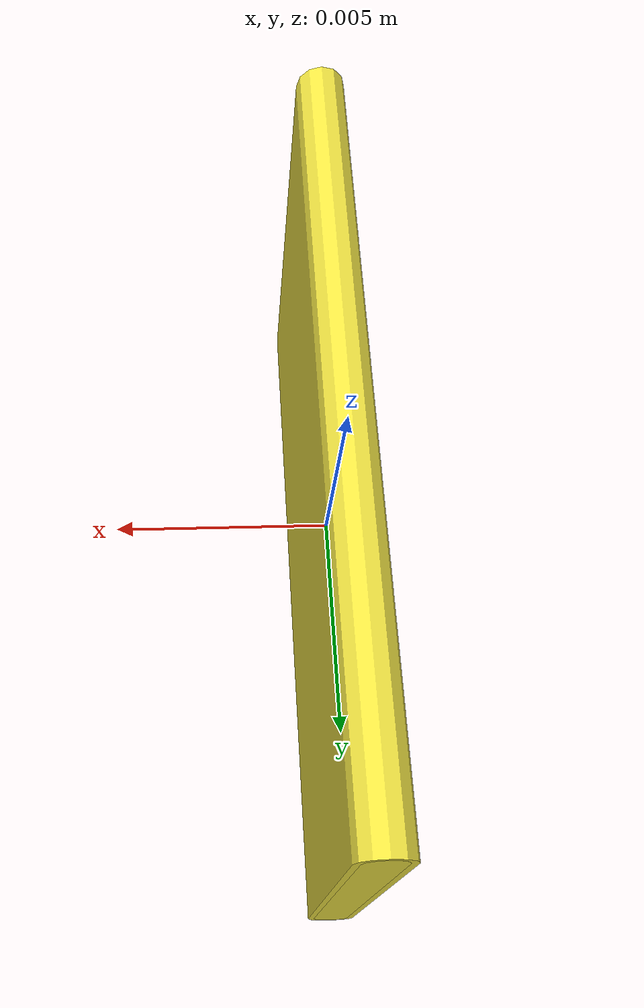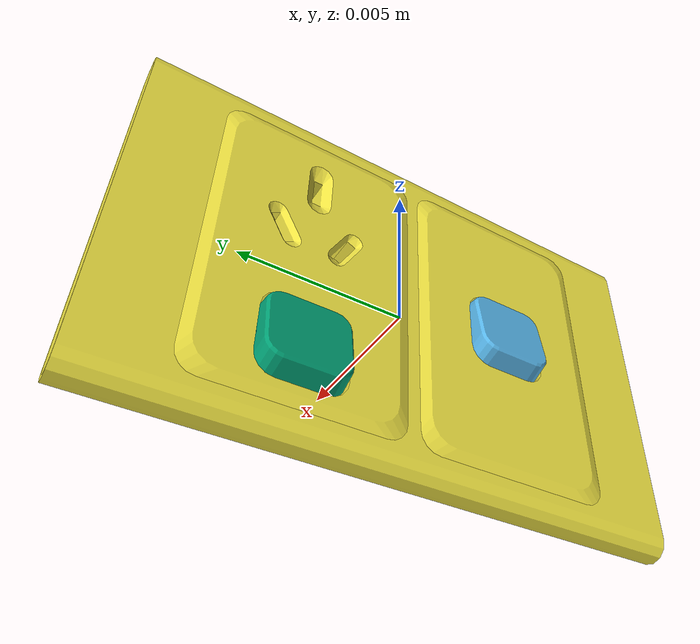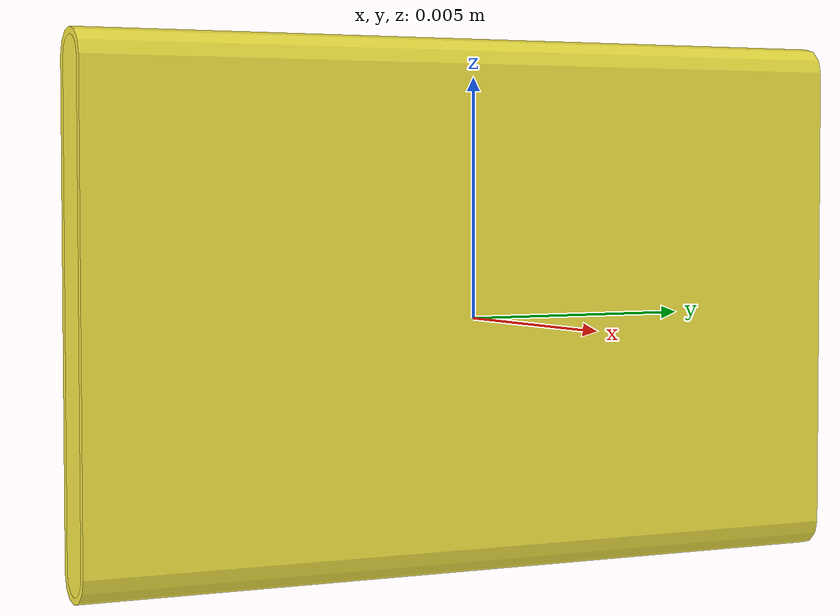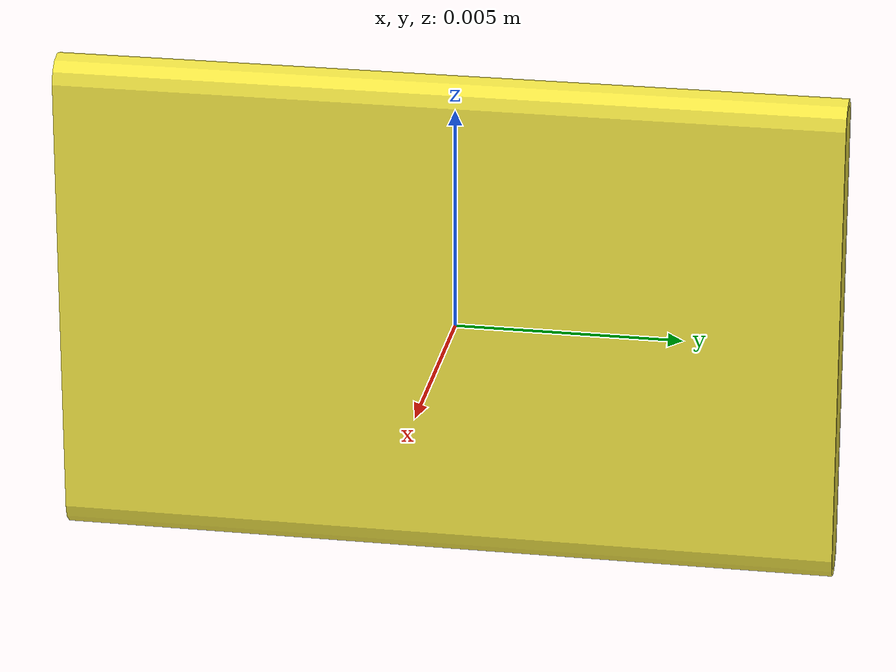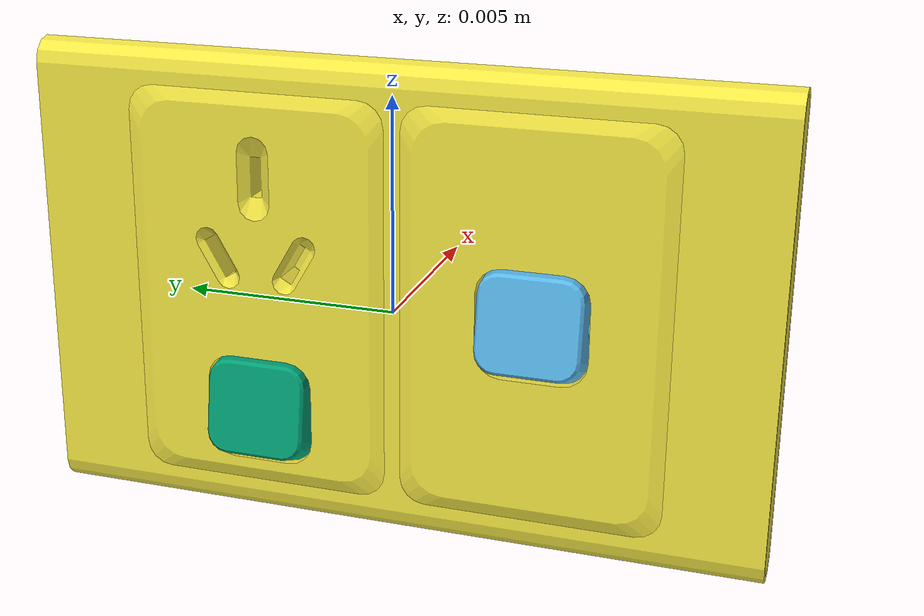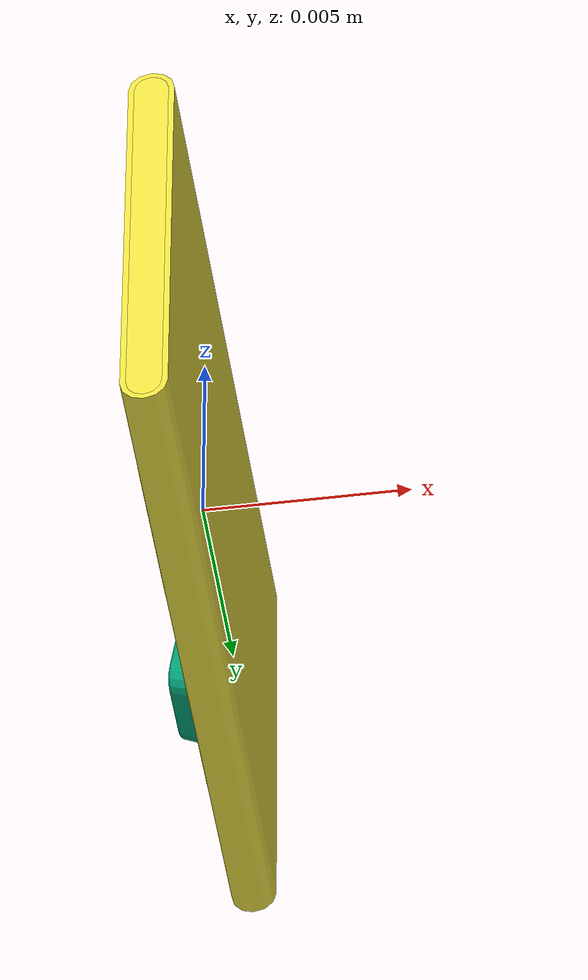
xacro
<robot name="partnet_786cd5cb-3a4a-4f3c-b32d-f932e864e8a0" xmlns:xacro="http://wiki.ros.org/xacro">
	<xacro:property name="scale" value="100" /><link name="base" />
	<link name="link_0">
		<visual name="switch-1">
			<origin xyz="${-0.45839503479137145 / scale} ${-0.026439931318833647 / scale} ${-0.06249735556131575 / scale}" />
			<geometry>
				<mesh filename="package://switch_description/urdf/100919/textured_objs/original-13.obj" scale="${1 / scale} ${1 / scale} ${1 / scale}" />
			</geometry>
		</visual>
		<collision>
			<origin xyz="${-0.45839503479137145 / scale} ${-0.026439931318833647 / scale} ${-0.06249735556131575 / scale}" />
			<geometry>
				<mesh filename="package://switch_description/urdf/100919/textured_objs/original-13.obj" scale="${1 / scale} ${1 / scale} ${1 / scale}" />
			</geometry>
		</collision>
	</link>
	<joint name="joint_0" type="revolute">
		<origin xyz="${0.45839503479137145 / scale} ${0.026439931318833647 / scale} ${0.06249735556131575 / scale}" />
		<axis xyz="1 0 0" />
		<child link="link_0" />
		<parent link="link_2" />
		<limit lower="0.0" upper="0.3895574890451344" effort="10.0" velocity="0.1" />
	</joint>
	<link name="link_1">
		<visual name="switch-2">
			<origin xyz="${0.18806524263611246 / scale} ${0.2549862866813132 / scale} ${-0.059230504779927085 / scale}" />
			<geometry>
				<mesh filename="package://switch_description/urdf/100919/textured_objs/original-16.obj" scale="${1 / scale} ${1 / scale} ${1 / scale}" />
			</geometry>
		</visual>
		<collision>
			<origin xyz="${0.18806524263611246 / scale} ${0.2549862866813132 / scale} ${-0.059230504779927085 / scale}" />
			<geometry>
				<mesh filename="package://switch_description/urdf/100919/textured_objs/original-16.obj" scale="${1 / scale} ${1 / scale} ${1 / scale}" />
			</geometry>
		</collision>
	</link>
	<joint name="joint_1" type="revolute">
		<origin xyz="${-0.18806524263611246 / scale} ${-0.2549862866813132 / scale} ${0.059230504779927085 / scale}" />
		<axis xyz="1 0 0" />
		<child link="link_1" />
		<parent link="link_2" />
		<limit lower="0.0" upper="0.3895574890451344" effort="10.0" velocity="0.1" />
	</joint>
	<link name="link_2">
		<visual name="base_body-3">
			<origin xyz="${0 / scale} ${0 / scale} ${0 / scale}" />
			<geometry>
				<mesh filename="package://switch_description/urdf/100919/textured_objs/original-4.obj" scale="${1 / scale} ${1 / scale} ${1 / scale}" />
			</geometry>
		</visual>
		<visual name="base_body-3">
			<origin xyz="${0 / scale} ${0 / scale} ${0 / scale}" />
			<geometry>
				<mesh filename="package://switch_description/urdf/100919/textured_objs/original-3.obj" scale="${1 / scale} ${1 / scale} ${1 / scale}" />
			</geometry>
		</visual>
		<visual name="base_body-3">
			<origin xyz="${0 / scale} ${0 / scale} ${0 / scale}" />
			<geometry>
				<mesh filename="package://switch_description/urdf/100919/textured_objs/original-2.obj" scale="${1 / scale} ${1 / scale} ${1 / scale}" />
			</geometry>
		</visual>
		<visual name="base_body-3">
			<origin xyz="${0 / scale} ${0 / scale} ${0 / scale}" />
			<geometry>
				<mesh filename="package://switch_description/urdf/100919/textured_objs/original-8.obj" scale="${1 / scale} ${1 / scale} ${1 / scale}" />
			</geometry>
		</visual>
		<visual name="base_body-3">
			<origin xyz="${0 / scale} ${0 / scale} ${0 / scale}" />
			<geometry>
				<mesh filename="package://switch_description/urdf/100919/textured_objs/original-9.obj" scale="${1 / scale} ${1 / scale} ${1 / scale}" />
			</geometry>
		</visual>
		<visual name="base_body-3">
			<origin xyz="${0 / scale} ${0 / scale} ${0 / scale}" />
			<geometry>
				<mesh filename="package://switch_description/urdf/100919/textured_objs/original-5.obj" scale="${1 / scale} ${1 / scale} ${1 / scale}" />
			</geometry>
		</visual>
		<visual name="base_body-3">
			<origin xyz="${0 / scale} ${0 / scale} ${0 / scale}" />
			<geometry>
				<mesh filename="package://switch_description/urdf/100919/textured_objs/original-6.obj" scale="${1 / scale} ${1 / scale} ${1 / scale}" />
			</geometry>
		</visual>
		<visual name="base_body-3">
			<origin xyz="${0 / scale} ${0 / scale} ${0 / scale}" />
			<geometry>
				<mesh filename="package://switch_description/urdf/100919/textured_objs/original-11.obj" scale="${1 / scale} ${1 / scale} ${1 / scale}" />
			</geometry>
		</visual>
		<visual name="base_body-3">
			<origin xyz="${0 / scale} ${0 / scale} ${0 / scale}" />
			<geometry>
				<mesh filename="package://switch_description/urdf/100919/textured_objs/original-17.obj" scale="${1 / scale} ${1 / scale} ${1 / scale}" />
			</geometry>
		</visual>
		<visual name="base_body-3">
			<origin xyz="${0 / scale} ${0 / scale} ${0 / scale}" />
			<geometry>
				<mesh filename="package://switch_description/urdf/100919/textured_objs/original-7.obj" scale="${1 / scale} ${1 / scale} ${1 / scale}" />
			</geometry>
		</visual>
		<visual name="base_body-3">
			<origin xyz="${0 / scale} ${0 / scale} ${0 / scale}" />
			<geometry>
				<mesh filename="package://switch_description/urdf/100919/textured_objs/original-1.obj" scale="${1 / scale} ${1 / scale} ${1 / scale}" />
			</geometry>
		</visual>
		<visual name="base_body-3">
			<origin xyz="${0 / scale} ${0 / scale} ${0 / scale}" />
			<geometry>
				<mesh filename="package://switch_description/urdf/100919/textured_objs/original-10.obj" scale="${1 / scale} ${1 / scale} ${1 / scale}" />
			</geometry>
		</visual>
		<visual name="base_body-3">
			<origin xyz="${0 / scale} ${0 / scale} ${0 / scale}" />
			<geometry>
				<mesh filename="package://switch_description/urdf/100919/textured_objs/original-14.obj" scale="${1 / scale} ${1 / scale} ${1 / scale}" />
			</geometry>
		</visual>
		<collision>
			<origin xyz="${0 / scale} ${0 / scale} ${0 / scale}" />
			<geometry>
				<mesh filename="package://switch_description/urdf/100919/textured_objs/original-4.obj" scale="${1 / scale} ${1 / scale} ${1 / scale}" />
			</geometry>
		</collision>
		<collision>
			<origin xyz="${0 / scale} ${0 / scale} ${0 / scale}" />
			<geometry>
				<mesh filename="package://switch_description/urdf/100919/textured_objs/original-3.obj" scale="${1 / scale} ${1 / scale} ${1 / scale}" />
			</geometry>
		</collision>
		<collision>
			<origin xyz="${0 / scale} ${0 / scale} ${0 / scale}" />
			<geometry>
				<mesh filename="package://switch_description/urdf/100919/textured_objs/original-2.obj" scale="${1 / scale} ${1 / scale} ${1 / scale}" />
			</geometry>
		</collision>
		<collision>
			<origin xyz="${0 / scale} ${0 / scale} ${0 / scale}" />
			<geometry>
				<mesh filename="package://switch_description/urdf/100919/textured_objs/original-8.obj" scale="${1 / scale} ${1 / scale} ${1 / scale}" />
			</geometry>
		</collision>
		<collision>
			<origin xyz="${0 / scale} ${0 / scale} ${0 / scale}" />
			<geometry>
				<mesh filename="package://switch_description/urdf/100919/textured_objs/original-9.obj" scale="${1 / scale} ${1 / scale} ${1 / scale}" />
			</geometry>
		</collision>
		<collision>
			<origin xyz="${0 / scale} ${0 / scale} ${0 / scale}" />
			<geometry>
				<mesh filename="package://switch_description/urdf/100919/textured_objs/original-5.obj" scale="${1 / scale} ${1 / scale} ${1 / scale}" />
			</geometry>
		</collision>
		<collision>
			<origin xyz="${0 / scale} ${0 / scale} ${0 / scale}" />
			<geometry>
				<mesh filename="package://switch_description/urdf/100919/textured_objs/original-6.obj" scale="${1 / scale} ${1 / scale} ${1 / scale}" />
			</geometry>
		</collision>
		<collision>
			<origin xyz="${0 / scale} ${0 / scale} ${0 / scale}" />
			<geometry>
				<mesh filename="package://switch_description/urdf/100919/textured_objs/original-11.obj" scale="${1 / scale} ${1 / scale} ${1 / scale}" />
			</geometry>
		</collision>
		<collision>
			<origin xyz="${0 / scale} ${0 / scale} ${0 / scale}" />
			<geometry>
				<mesh filename="package://switch_description/urdf/100919/textured_objs/original-17.obj" scale="${1 / scale} ${1 / scale} ${1 / scale}" />
			</geometry>
		</collision>
		<collision>
			<origin xyz="${0 / scale} ${0 / scale} ${0 / scale}" />
			<geometry>
				<mesh filename="package://switch_description/urdf/100919/textured_objs/original-7.obj" scale="${1 / scale} ${1 / scale} ${1 / scale}" />
			</geometry>
		</collision>
		<collision>
			<origin xyz="${0 / scale} ${0 / scale} ${0 / scale}" />
			<geometry>
				<mesh filename="package://switch_description/urdf/100919/textured_objs/original-1.obj" scale="${1 / scale} ${1 / scale} ${1 / scale}" />
			</geometry>
		</collision>
		<collision>
			<origin xyz="${0 / scale} ${0 / scale} ${0 / scale}" />
			<geometry>
				<mesh filename="package://switch_description/urdf/100919/textured_objs/original-10.obj" scale="${1 / scale} ${1 / scale} ${1 / scale}" />
			</geometry>
		</collision>
		<collision>
			<origin xyz="${0 / scale} ${0 / scale} ${0 / scale}" />
			<geometry>
				<mesh filename="package://switch_description/urdf/100919/textured_objs/original-14.obj" scale="${1 / scale} ${1 / scale} ${1 / scale}" />
			</geometry>
		</collision>
	</link>
	<joint name="joint_2" type="fixed">
		<origin rpy="1.570796326794897 0 -1.570796326794897" xyz="${0 / scale} ${0 / scale} ${0 / scale}" />
		<child link="link_2" />
		<parent link="base" />
	</joint>
</robot>
